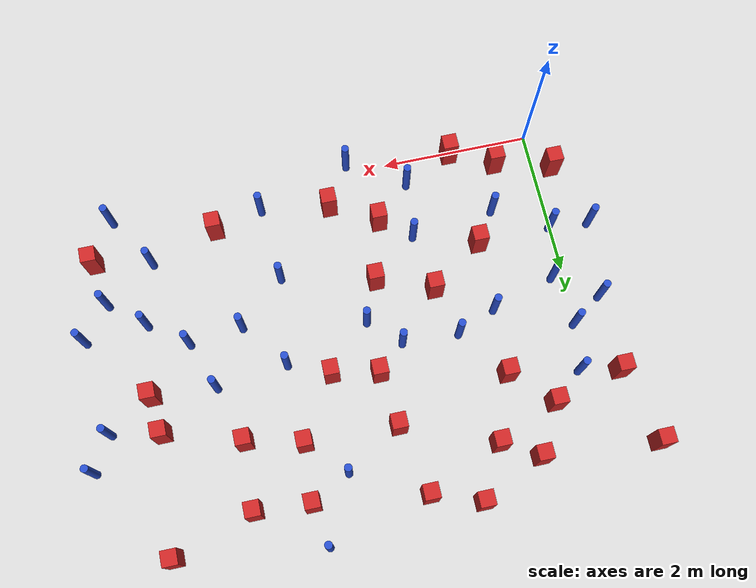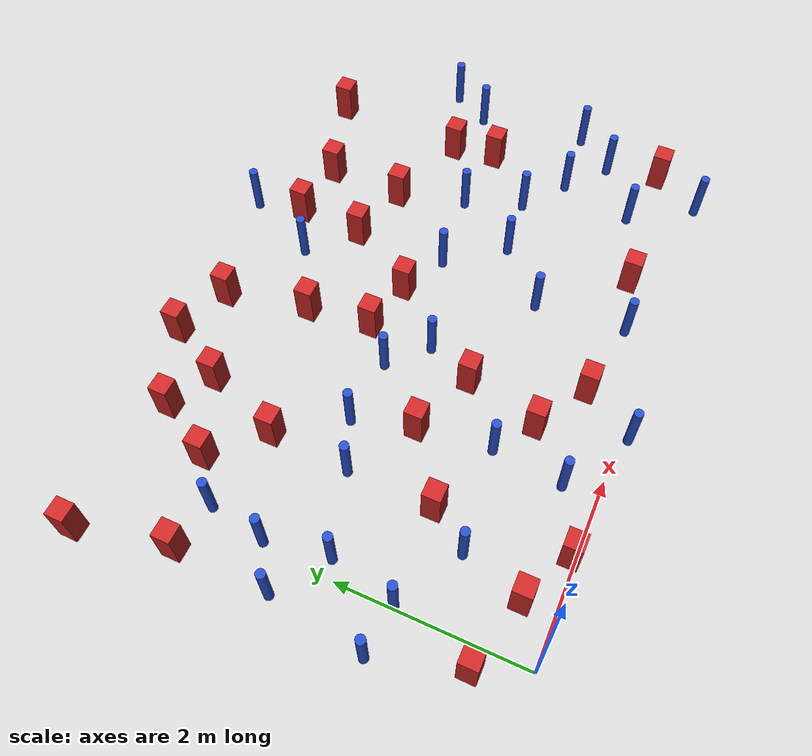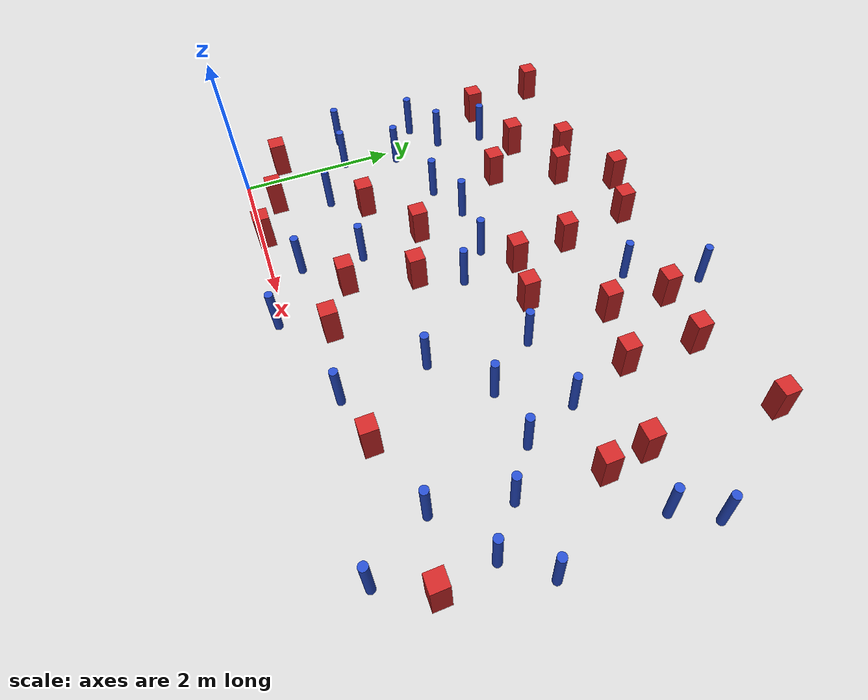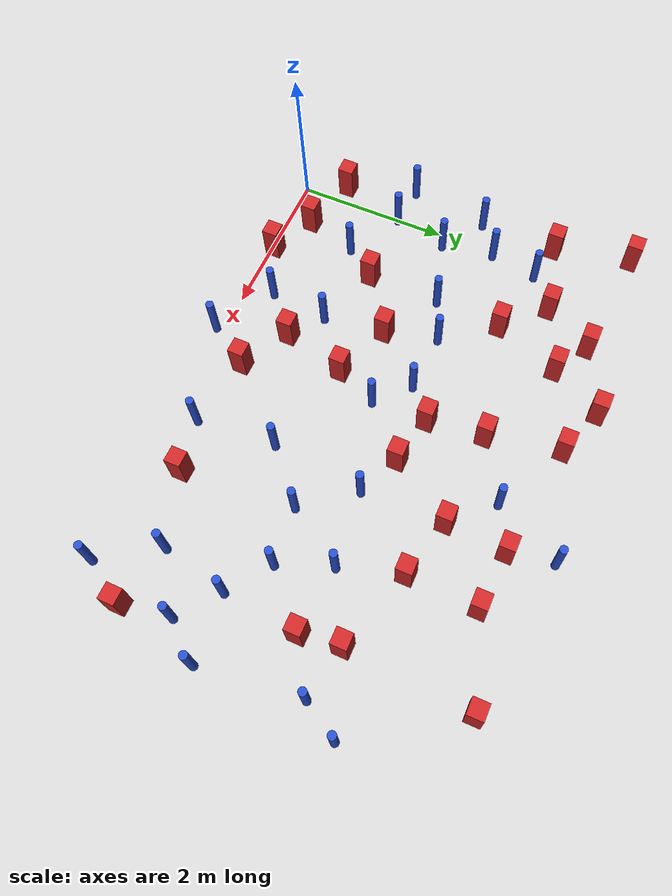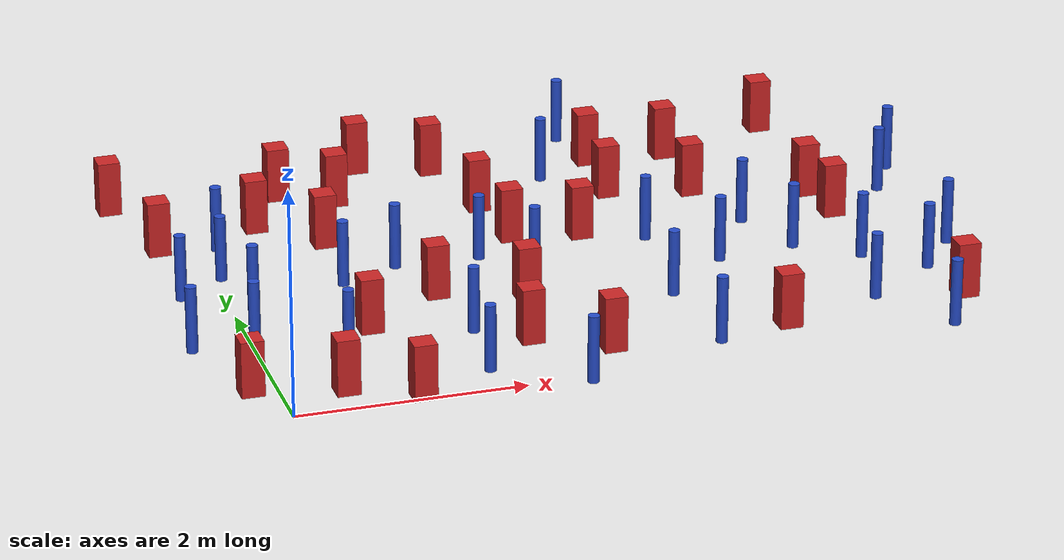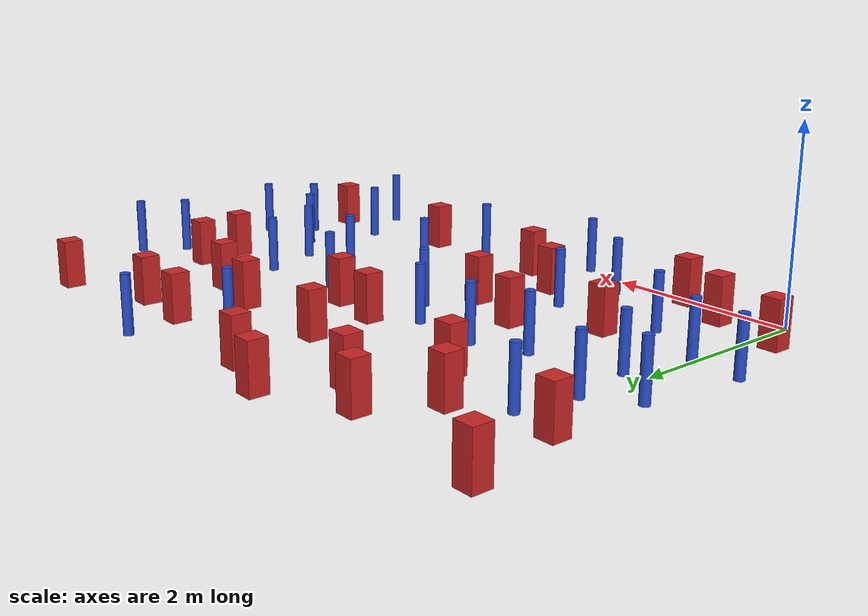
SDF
<sdf version="1.6">
 <model name="dense_28">
  <model name="square_post_obstacle4">
   <static>true</static>
   <pose>2.62261659096 3.62090149515 8.22691968438e-08 7.2212513382e-06 -7.54495500217e-07 2.29674213826e-05</pose>
   <link name="link">
    <pose>0 0 0.25 0 -0 0</pose>
    <inertial>
     <mass>100</mass>
     <inertia>
      <ixx>0.166667</ixx>
      <ixy>0</ixy>
      <ixz>0</ixz>
      <iyy>0.166667</iyy>
      <iyz>0</iyz>
      <izz>0.166667</izz>
     </inertia>
    </inertial>
    <collision name="collision"><geometry><box><size>.2 .2 .5</size></box></geometry></collision>
    <visual name="visual">
     <geometry><box><size>.2 .2 .5</size></box></geometry>
     <material>
      <script><name>Gazebo/Red</name><uri>file://media/materials/scripts/gazebo.material</uri></script>
     </material>
    </visual>
   </link>
  </model>
  <model name="square_post_obstacle13">
   <static>true</static>
   <pose>1.10403048548 3.2495813458 8.22691968438e-08 7.2212513382e-06 -7.54495500217e-07 2.29674213826e-05</pose>
   <link name="link">
    <pose>0 0 0.25 0 -0 0</pose>
    <inertial>
     <mass>100</mass>
     <inertia>
      <ixx>0.166667</ixx>
      <ixy>0</ixy>
      <ixz>0</ixz>
      <iyy>0.166667</iyy>
      <iyz>0</iyz>
      <izz>0.166667</izz>
     </inertia>
    </inertial>
    <collision name="collision"><geometry><box><size>.2 .2 .5</size></box></geometry></collision>
    <visual name="visual">
     <geometry><box><size>.2 .2 .5</size></box></geometry>
     <material>
      <script><name>Gazebo/Red</name><uri>file://media/materials/scripts/gazebo.material</uri></script>
     </material>
    </visual>
   </link>
  </model>
  <model name="square_post_obstacle18">
   <static>true</static>
   <pose>2.70620414548 2.89905259573 8.22691968438e-08 7.2212513382e-06 -7.54495500217e-07 2.29674213826e-05</pose>
   <link name="link">
    <pose>0 0 0.25 0 -0 0</pose>
    <inertial>
     <mass>100</mass>
     <inertia>
      <ixx>0.166667</ixx>
      <ixy>0</ixy>
      <ixz>0</ixz>
      <iyy>0.166667</iyy>
      <iyz>0</iyz>
      <izz>0.166667</izz>
     </inertia>
    </inertial>
    <collision name="collision"><geometry><box><size>.2 .2 .5</size></box></geometry></collision>
    <visual name="visual">
     <geometry><box><size>.2 .2 .5</size></box></geometry>
     <material>
      <script><name>Gazebo/Red</name><uri>file://media/materials/scripts/gazebo.material</uri></script>
     </material>
    </visual>
   </link>
  </model>
  <model name="square_post_obstacle20">
   <static>true</static>
   <pose>0.602518353487 3.74456204148 8.22691968438e-08 7.2212513382e-06 -7.54495500217e-07 2.29674213826e-05</pose>
   <link name="link">
    <pose>0 0 0.25 0 -0 0</pose>
    <inertial>
     <mass>100</mass>
     <inertia>
      <ixx>0.166667</ixx>
      <ixy>0</ixy>
      <ixz>0</ixz>
      <iyy>0.166667</iyy>
      <iyz>0</iyz>
      <izz>0.166667</izz>
     </inertia>
    </inertial>
    <collision name="collision"><geometry><box><size>.2 .2 .5</size></box></geometry></collision>
    <visual name="visual">
     <geometry><box><size>.2 .2 .5</size></box></geometry>
     <material>
      <script><name>Gazebo/Red</name><uri>file://media/materials/scripts/gazebo.material</uri></script>
     </material>
    </visual>
   </link>
  </model>
  <model name="square_post_obstacle21">
   <static>true</static>
   <pose>2.87978851423 0.481293469229 8.22691968438e-08 7.2212513382e-06 -7.54495500217e-07 2.29674213826e-05</pose>
   <link name="link">
    <pose>0 0 0.25 0 -0 0</pose>
    <inertial>
     <mass>100</mass>
     <inertia>
      <ixx>0.166667</ixx>
      <ixy>0</ixy>
      <ixz>0</ixz>
      <iyy>0.166667</iyy>
      <iyz>0</iyz>
      <izz>0.166667</izz>
     </inertia>
    </inertial>
    <collision name="collision"><geometry><box><size>.2 .2 .5</size></box></geometry></collision>
    <visual name="visual">
     <geometry><box><size>.2 .2 .5</size></box></geometry>
     <material>
      <script><name>Gazebo/Red</name><uri>file://media/materials/scripts/gazebo.material</uri></script>
     </material>
    </visual>
   </link>
  </model>
  <model name="pole_obstacle15">
   <static>true</static>
   <pose>0.735092478149 0.998841244981 2.88873142074e-08 -9.90536690204e-09 4.6021994898e-07 -1.20965994967e-07</pose>
   <link name="link">
    <pose>0 0 0.3 0 -0 0</pose>
    <inertial>
     <mass>1</mass>
     <inertia><ixx>0.145833</ixx><ixy>0</ixy><ixz>0</ixz><iyy>0.145833</iyy><iyz>0</iyz><izz>0.125</izz></inertia>
    </inertial>
    <collision name="collision">
     <geometry><cylinder><radius>0.05</radius><length>.6</length></cylinder></geometry>
    </collision>
    <visual name="visual">
     <geometry><cylinder><radius>0.05</radius><length>.6</length></cylinder></geometry>
     <material>
      <script><name>Gazebo/Blue</name><uri>file://media/materials/scripts/gazebo.material</uri></script>
     </material>
    </visual>
   </link>
  </model>
  <model name="pole_obstacle16">
   <static>true</static>
   <pose>5.79698424891 0.0809831116426 2.88873142074e-08 -9.90536689727e-09 4.60219948992e-07 -1.20965994958e-07</pose>
   <link name="link">
    <pose>0 0 0.3 0 -0 0</pose>
    <inertial>
     <mass>1</mass>
     <inertia><ixx>0.145833</ixx><ixy>0</ixy><ixz>0</ixz><iyy>0.145833</iyy><iyz>0</iyz><izz>0.125</izz></inertia>
    </inertial>
    <collision name="collision">
     <geometry><cylinder><radius>0.05</radius><length>.6</length></cylinder></geometry>
    </collision>
    <visual name="visual">
     <geometry><cylinder><radius>0.05</radius><length>.6</length></cylinder></geometry>
     <material>
      <script><name>Gazebo/Blue</name><uri>file://media/materials/scripts/gazebo.material</uri></script>
     </material>
    </visual>
   </link>
  </model>
  <model name="square_post_obstacle31">
   <static>true</static>
   <pose>2.43105017646 4.54562582871 8.22691968438e-08 7.2212513382e-06 -7.54495500217e-07 2.29674213826e-05</pose>
   <link name="link">
    <pose>0 0 0.25 0 -0 0</pose>
    <inertial>
     <mass>100</mass>
     <inertia>
      <ixx>0.166667</ixx>
      <ixy>0</ixy>
      <ixz>0</ixz>
      <iyy>0.166667</iyy>
      <iyz>0</iyz>
      <izz>0.166667</izz>
     </inertia>
    </inertial>
    <collision name="collision"><geometry><box><size>.2 .2 .5</size></box></geometry></collision>
    <visual name="visual">
     <geometry><box><size>.2 .2 .5</size></box></geometry>
     <material>
      <script><name>Gazebo/Red</name><uri>file://media/materials/scripts/gazebo.material</uri></script>
     </material>
    </visual>
   </link>
  </model>
  <model name="pole_obstacle22">
   <static>true</static>
   <pose>-0.501604950757 1.44115727738 2.88873142074e-08 -9.90536689621e-09 4.60219948994e-07 -1.20965994957e-07</pose>
   <link name="link">
    <pose>0 0 0.3 0 -0 0</pose>
    <inertial>
     <mass>1</mass>
     <inertia><ixx>0.145833</ixx><ixy>0</ixy><ixz>0</ixz><iyy>0.145833</iyy><iyz>0</iyz><izz>0.125</izz></inertia>
    </inertial>
    <collision name="collision">
     <geometry><cylinder><radius>0.05</radius><length>.6</length></cylinder></geometry>
    </collision>
    <visual name="visual">
     <geometry><cylinder><radius>0.05</radius><length>.6</length></cylinder></geometry>
     <material>
      <script><name>Gazebo/Blue</name><uri>file://media/materials/scripts/gazebo.material</uri></script>
     </material>
    </visual>
   </link>
  </model>
  <model name="pole_obstacle27">
   <static>true</static>
   <pose>1.57937318762 2.5967450185 2.88873142074e-08 -9.90536689791e-09 4.6021994899e-07 -1.20965994959e-07</pose>
   <link name="link">
    <pose>0 0 0.3 0 -0 0</pose>
    <inertial>
     <mass>1</mass>
     <inertia><ixx>0.145833</ixx><ixy>0</ixy><ixz>0</ixz><iyy>0.145833</iyy><iyz>0</iyz><izz>0.125</izz></inertia>
    </inertial>
    <collision name="collision">
     <geometry><cylinder><radius>0.05</radius><length>.6</length></cylinder></geometry>
    </collision>
    <visual name="visual">
     <geometry><cylinder><radius>0.05</radius><length>.6</length></cylinder></geometry>
     <material>
      <script><name>Gazebo/Blue</name><uri>file://media/materials/scripts/gazebo.material</uri></script>
     </material>
    </visual>
   </link>
  </model>
  <model name="pole_obstacle28">
   <static>true</static>
   <pose>0.0711021066911 2.78482618308 2.88873142074e-08 -9.90536692479e-09 4.60219948927e-07 -1.20965994989e-07</pose>
   <link name="link">
    <pose>0 0 0.3 0 -0 0</pose>
    <inertial>
     <mass>1</mass>
     <inertia><ixx>0.145833</ixx><ixy>0</ixy><ixz>0</ixz><iyy>0.145833</iyy><iyz>0</iyz><izz>0.125</izz></inertia>
    </inertial>
    <collision name="collision">
     <geometry><cylinder><radius>0.05</radius><length>.6</length></cylinder></geometry>
    </collision>
    <visual name="visual">
     <geometry><cylinder><radius>0.05</radius><length>.6</length></cylinder></geometry>
     <material>
      <script><name>Gazebo/Blue</name><uri>file://media/materials/scripts/gazebo.material</uri></script>
     </material>
    </visual>
   </link>
  </model>
  <model name="pole_obstacle31">
   <static>true</static>
   <pose>5.54209693001 1.62750616036 2.88873142074e-08 -9.90536689445e-09 4.60219948999e-07 -1.20965994956e-07</pose>
   <link name="link">
    <pose>0 0 0.3 0 -0 0</pose>
    <inertial>
     <mass>1</mass>
     <inertia><ixx>0.145833</ixx><ixy>0</ixy><ixz>0</ixz><iyy>0.145833</iyy><iyz>0</iyz><izz>0.125</izz></inertia>
    </inertial>
    <collision name="collision">
     <geometry><cylinder><radius>0.05</radius><length>.6</length></cylinder></geometry>
    </collision>
    <visual name="visual">
     <geometry><cylinder><radius>0.05</radius><length>.6</length></cylinder></geometry>
     <material>
      <script><name>Gazebo/Blue</name><uri>file://media/materials/scripts/gazebo.material</uri></script>
     </material>
    </visual>
   </link>
  </model>
  <model name="pole_obstacle47">
   <static>true</static>
   <pose>6.20660354552 2.96202624904 2.88873142074e-08 -9.90536690245e-09 4.6021994898e-07 -1.20965994966e-07</pose>
   <link name="link">
    <pose>0 0 0.3 0 -0 0</pose>
    <inertial>
     <mass>1</mass>
     <inertia><ixx>0.145833</ixx><ixy>0</ixy><ixz>0</ixz><iyy>0.145833</iyy><iyz>0</iyz><izz>0.125</izz></inertia>
    </inertial>
    <collision name="collision">
     <geometry><cylinder><radius>0.05</radius><length>.6</length></cylinder></geometry>
    </collision>
    <visual name="visual">
     <geometry><cylinder><radius>0.05</radius><length>.6</length></cylinder></geometry>
     <material>
      <script><name>Gazebo/Blue</name><uri>file://media/materials/scripts/gazebo.material</uri></script>
     </material>
    </visual>
   </link>
  </model>
  <model name="square_post_obstacle50">
   <static>true</static>
   <pose>6.10516463715 0.632587236259 8.22691968438e-08 7.2212513382e-06 -7.54495500217e-07 2.29674213826e-05</pose>
   <link name="link">
    <pose>0 0 0.25 0 -0 0</pose>
    <inertial>
     <mass>100</mass>
     <inertia>
      <ixx>0.166667</ixx>
      <ixy>0</ixy>
      <ixz>0</ixz>
      <iyy>0.166667</iyy>
      <iyz>0</iyz>
      <izz>0.166667</izz>
     </inertia>
    </inertial>
    <collision name="collision"><geometry><box><size>.2 .2 .5</size></box></geometry></collision>
    <visual name="visual">
     <geometry><box><size>.2 .2 .5</size></box></geometry>
     <material>
      <script><name>Gazebo/Red</name><uri>file://media/materials/scripts/gazebo.material</uri></script>
     </material>
    </visual>
   </link>
  </model>
  <model name="pole_obstacle53">
   <static>true</static>
   <pose>6.46365630959 3.40705639726 2.88873142074e-08 -9.90536690245e-09 4.6021994898e-07 -1.20965994966e-07</pose>
   <link name="link">
    <pose>0 0 0.3 0 -0 0</pose>
    <inertial>
     <mass>1</mass>
     <inertia><ixx>0.145833</ixx><ixy>0</ixy><ixz>0</ixz><iyy>0.145833</iyy><iyz>0</iyz><izz>0.125</izz></inertia>
    </inertial>
    <collision name="collision">
     <geometry><cylinder><radius>0.05</radius><length>.6</length></cylinder></geometry>
    </collision>
    <visual name="visual">
     <geometry><cylinder><radius>0.05</radius><length>.6</length></cylinder></geometry>
     <material>
      <script><name>Gazebo/Blue</name><uri>file://media/materials/scripts/gazebo.material</uri></script>
     </material>
    </visual>
   </link>
  </model>
  <model name="pole_obstacle59">
   <static>true</static>
   <pose>3.71259882639 1.35113123196 2.88873142074e-08 -9.90536689395e-09 4.60219949e-07 -1.20965994953e-07</pose>
   <link name="link">
    <pose>0 0 0.3 0 -0 0</pose>
    <inertial>
     <mass>1</mass>
     <inertia><ixx>0.145833</ixx><ixy>0</ixy><ixz>0</ixz><iyy>0.145833</iyy><iyz>0</iyz><izz>0.125</izz></inertia>
    </inertial>
    <collision name="collision">
     <geometry><cylinder><radius>0.05</radius><length>.6</length></cylinder></geometry>
    </collision>
    <visual name="visual">
     <geometry><cylinder><radius>0.05</radius><length>.6</length></cylinder></geometry>
     <material>
      <script><name>Gazebo/Blue</name><uri>file://media/materials/scripts/gazebo.material</uri></script>
     </material>
    </visual>
   </link>
  </model>
  <model name="pole_obstacle61">
   <static>true</static>
   <pose>1.86023330408 1.13393428423 2.88873142074e-08 -9.90536689672e-09 4.60219948993e-07 -1.20965994959e-07</pose>
   <link name="link">
    <pose>0 0 0.3 0 -0 0</pose>
    <inertial>
     <mass>1</mass>
     <inertia><ixx>0.145833</ixx><ixy>0</ixy><ixz>0</ixz><iyy>0.145833</iyy><iyz>0</iyz><izz>0.125</izz></inertia>
    </inertial>
    <collision name="collision">
     <geometry><cylinder><radius>0.05</radius><length>.6</length></cylinder></geometry>
    </collision>
    <visual name="visual">
     <geometry><cylinder><radius>0.05</radius><length>.6</length></cylinder></geometry>
     <material>
      <script><name>Gazebo/Blue</name><uri>file://media/materials/scripts/gazebo.material</uri></script>
     </material>
    </visual>
   </link>
  </model>
  <model name="square_post_obstacle65">
   <static>true</static>
   <pose>3.31616375345 2.77729734283 8.22691968438e-08 7.2212513382e-06 -7.54495500217e-07 2.29674213826e-05</pose>
   <link name="link">
    <pose>0 0 0.25 0 -0 0</pose>
    <inertial>
     <mass>100</mass>
     <inertia>
      <ixx>0.166667</ixx>
      <ixy>0</ixy>
      <ixz>0</ixz>
      <iyy>0.166667</iyy>
      <iyz>0</iyz>
      <izz>0.166667</izz>
     </inertia>
    </inertial>
    <collision name="collision"><geometry><box><size>.2 .2 .5</size></box></geometry></collision>
    <visual name="visual">
     <geometry><box><size>.2 .2 .5</size></box></geometry>
     <material>
      <script><name>Gazebo/Red</name><uri>file://media/materials/scripts/gazebo.material</uri></script>
     </material>
    </visual>
   </link>
  </model>
  <model name="square_post_obstacle74">
   <static>true</static>
   <pose>0.534242562997 0.334819226586 8.22691968438e-08 7.22125133819e-06 -7.54495500217e-07 2.29674213826e-05</pose>
   <link name="link">
    <pose>0 0 0.25 0 -0 0</pose>
    <inertial>
     <mass>100</mass>
     <inertia>
      <ixx>0.166667</ixx>
      <ixy>0</ixy>
      <ixz>0</ixz>
      <iyy>0.166667</iyy>
      <iyz>0</iyz>
      <izz>0.166667</izz>
     </inertia>
    </inertial>
    <collision name="collision"><geometry><box><size>.2 .2 .5</size></box></geometry></collision>
    <visual name="visual">
     <geometry><box><size>.2 .2 .5</size></box></geometry>
     <material>
      <script><name>Gazebo/Red</name><uri>file://media/materials/scripts/gazebo.material</uri></script>
     </material>
    </visual>
   </link>
  </model>
  <model name="pole_obstacle73">
   <static>true</static>
   <pose>5.03723471642 1.99553160137 2.88873142074e-08 -9.90536689273e-09 4.60219949003e-07 -1.20965994953e-07</pose>
   <link name="link">
    <pose>0 0 0.3 0 -0 0</pose>
    <inertial>
     <mass>1</mass>
     <inertia><ixx>0.145833</ixx><ixy>0</ixy><ixz>0</ixz><iyy>0.145833</iyy><iyz>0</iyz><izz>0.125</izz></inertia>
    </inertial>
    <collision name="collision">
     <geometry><cylinder><radius>0.05</radius><length>.6</length></cylinder></geometry>
    </collision>
    <visual name="visual">
     <geometry><cylinder><radius>0.05</radius><length>.6</length></cylinder></geometry>
     <material>
      <script><name>Gazebo/Blue</name><uri>file://media/materials/scripts/gazebo.material</uri></script>
     </material>
    </visual>
   </link>
  </model>
  <model name="pole_obstacle85">
   <static>true</static>
   <pose>1.776668315 0.367303651979 2.88873142074e-08 -9.90536689733e-09 4.60219948992e-07 -1.20965994959e-07</pose>
   <link name="link">
    <pose>0 0 0.3 0 -0 0</pose>
    <inertial>
     <mass>1</mass>
     <inertia><ixx>0.145833</ixx><ixy>0</ixy><ixz>0</ixz><iyy>0.145833</iyy><iyz>0</iyz><izz>0.125</izz></inertia>
    </inertial>
    <collision name="collision">
     <geometry><cylinder><radius>0.05</radius><length>.6</length></cylinder></geometry>
    </collision>
    <visual name="visual">
     <geometry><cylinder><radius>0.05</radius><length>.6</length></cylinder></geometry>
     <material>
      <script><name>Gazebo/Blue</name><uri>file://media/materials/scripts/gazebo.material</uri></script>
     </material>
    </visual>
   </link>
  </model>
  <model name="square_post_obstacle80">
   <static>true</static>
   <pose>5.55546648257 3.09088001525 8.22691968438e-08 7.2212513382e-06 -7.54495500217e-07 2.29674213826e-05</pose>
   <link name="link">
    <pose>0 0 0.25 0 -0 0</pose>
    <inertial>
     <mass>100</mass>
     <inertia>
      <ixx>0.166667</ixx>
      <ixy>0</ixy>
      <ixz>0</ixz>
      <iyy>0.166667</iyy>
      <iyz>0</iyz>
      <izz>0.166667</izz>
     </inertia>
    </inertial>
    <collision name="collision"><geometry><box><size>.2 .2 .5</size></box></geometry></collision>
    <visual name="visual">
     <geometry><box><size>.2 .2 .5</size></box></geometry>
     <material>
      <script><name>Gazebo/Red</name><uri>file://media/materials/scripts/gazebo.material</uri></script>
     </material>
    </visual>
   </link>
  </model>
  <model name="square_post_obstacle81">
   <static>true</static>
   <pose>-0.551517128975 4.50697306945 8.22691968438e-08 7.2212513382e-06 -7.54495500217e-07 2.29674213826e-05</pose>
   <link name="link">
    <pose>0 0 0.25 0 -0 0</pose>
    <inertial>
     <mass>100</mass>
     <inertia>
      <ixx>0.166667</ixx>
      <ixy>0</ixy>
      <ixz>0</ixz>
      <iyy>0.166667</iyy>
      <iyz>0</iyz>
      <izz>0.166667</izz>
     </inertia>
    </inertial>
    <collision name="collision"><geometry><box><size>.2 .2 .5</size></box></geometry></collision>
    <visual name="visual">
     <geometry><box><size>.2 .2 .5</size></box></geometry>
     <material>
      <script><name>Gazebo/Red</name><uri>file://media/materials/scripts/gazebo.material</uri></script>
     </material>
    </visual>
   </link>
  </model>
  <model name="pole_obstacle94">
   <static>true</static>
   <pose>4.78990463097 2.6457673171 2.88873142074e-08 -9.90536690245e-09 4.6021994898e-07 -1.20965994966e-07</pose>
   <link name="link">
    <pose>0 0 0.3 0 -0 0</pose>
    <inertial>
     <mass>1</mass>
     <inertia><ixx>0.145833</ixx><ixy>0</ixy><ixz>0</ixz><iyy>0.145833</iyy><iyz>0</iyz><izz>0.125</izz></inertia>
    </inertial>
    <collision name="collision">
     <geometry><cylinder><radius>0.05</radius><length>.6</length></cylinder></geometry>
    </collision>
    <visual name="visual">
     <geometry><cylinder><radius>0.05</radius><length>.6</length></cylinder></geometry>
     <material>
      <script><name>Gazebo/Blue</name><uri>file://media/materials/scripts/gazebo.material</uri></script>
     </material>
    </visual>
   </link>
  </model>
  <model name="pole_obstacle96">
   <static>true</static>
   <pose>5.3490869151 0.785331650575 2.88873142074e-08 -9.90536689837e-09 4.60219948989e-07 -1.2096599496e-07</pose>
   <link name="link">
    <pose>0 0 0.3 0 -0 0</pose>
    <inertial>
     <mass>1</mass>
     <inertia><ixx>0.145833</ixx><ixy>0</ixy><ixz>0</ixz><iyy>0.145833</iyy><iyz>0</iyz><izz>0.125</izz></inertia>
    </inertial>
    <collision name="collision">
     <geometry><cylinder><radius>0.05</radius><length>.6</length></cylinder></geometry>
    </collision>
    <visual name="visual">
     <geometry><cylinder><radius>0.05</radius><length>.6</length></cylinder></geometry>
     <material>
      <script><name>Gazebo/Blue</name><uri>file://media/materials/scripts/gazebo.material</uri></script>
     </material>
    </visual>
   </link>
  </model>
  <model name="pole_obstacle104">
   <static>true</static>
   <pose>0.189261439396 2.10461520238 2.88873142074e-08 -9.90536689569e-09 4.60219948995e-07 -1.20965994955e-07</pose>
   <link name="link">
    <pose>0 0 0.3 0 -0 0</pose>
    <inertial>
     <mass>1</mass>
     <inertia><ixx>0.145833</ixx><ixy>0</ixy><ixz>0</ixz><iyy>0.145833</iyy><iyz>0</iyz><izz>0.125</izz></inertia>
    </inertial>
    <collision name="collision">
     <geometry><cylinder><radius>0.05</radius><length>.6</length></cylinder></geometry>
    </collision>
    <visual name="visual">
     <geometry><cylinder><radius>0.05</radius><length>.6</length></cylinder></geometry>
     <material>
      <script><name>Gazebo/Blue</name><uri>file://media/materials/scripts/gazebo.material</uri></script>
     </material>
    </visual>
   </link>
  </model>
  <model name="square_post_obstacle92">
   <static>true</static>
   <pose>4.59211533059 4.29067833879 8.22691968438e-08 7.2212513382e-06 -7.54495500217e-07 2.29674213826e-05</pose>
   <link name="link">
    <pose>0 0 0.25 0 -0 0</pose>
    <inertial>
     <mass>100</mass>
     <inertia>
      <ixx>0.166667</ixx>
      <ixy>0</ixy>
      <ixz>0</ixz>
      <iyy>0.166667</iyy>
      <iyz>0</iyz>
      <izz>0.166667</izz>
     </inertia>
    </inertial>
    <collision name="collision"><geometry><box><size>.2 .2 .5</size></box></geometry></collision>
    <visual name="visual">
     <geometry><box><size>.2 .2 .5</size></box></geometry>
     <material>
      <script><name>Gazebo/Red</name><uri>file://media/materials/scripts/gazebo.material</uri></script>
     </material>
    </visual>
   </link>
  </model>
  <model name="pole_obstacle108">
   <static>true</static>
   <pose>3.79269333524 0.333719324461 2.88873142074e-08 -9.90536689307e-09 4.60219949002e-07 -1.20965994954e-07</pose>
   <link name="link">
    <pose>0 0 0.3 0 -0 0</pose>
    <inertial>
     <mass>1</mass>
     <inertia><ixx>0.145833</ixx><ixy>0</ixy><ixz>0</ixz><iyy>0.145833</iyy><iyz>0</iyz><izz>0.125</izz></inertia>
    </inertial>
    <collision name="collision">
     <geometry><cylinder><radius>0.05</radius><length>.6</length></cylinder></geometry>
    </collision>
    <visual name="visual">
     <geometry><cylinder><radius>0.05</radius><length>.6</length></cylinder></geometry>
     <material>
      <script><name>Gazebo/Blue</name><uri>file://media/materials/scripts/gazebo.material</uri></script>
     </material>
    </visual>
   </link>
  </model>
  <model name="pole_obstacle113">
   <static>true</static>
   <pose>4.3310178954 1.9167147348 2.88873142074e-08 -9.90536689445e-09 4.60219948999e-07 -1.20965994956e-07</pose>
   <link name="link">
    <pose>0 0 0.3 0 -0 0</pose>
    <inertial>
     <mass>1</mass>
     <inertia><ixx>0.145833</ixx><ixy>0</ixy><ixz>0</ixz><iyy>0.145833</iyy><iyz>0</iyz><izz>0.125</izz></inertia>
    </inertial>
    <collision name="collision">
     <geometry><cylinder><radius>0.05</radius><length>.6</length></cylinder></geometry>
    </collision>
    <visual name="visual">
     <geometry><cylinder><radius>0.05</radius><length>.6</length></cylinder></geometry>
     <material>
      <script><name>Gazebo/Blue</name><uri>file://media/materials/scripts/gazebo.material</uri></script>
     </material>
    </visual>
   </link>
  </model>
  <model name="pole_obstacle126">
   <static>true</static>
   <pose>0.0246405944287 1.38914540518 2.88873142074e-08 -9.9053669004e-09 4.60219948984e-07 -1.20965994962e-07</pose>
   <link name="link">
    <pose>0 0 0.3 0 -0 0</pose>
    <inertial>
     <mass>1</mass>
     <inertia><ixx>0.145833</ixx><ixy>0</ixy><ixz>0</ixz><iyy>0.145833</iyy><iyz>0</iyz><izz>0.125</izz></inertia>
    </inertial>
    <collision name="collision">
     <geometry><cylinder><radius>0.05</radius><length>.6</length></cylinder></geometry>
    </collision>
    <visual name="visual">
     <geometry><cylinder><radius>0.05</radius><length>.6</length></cylinder></geometry>
     <material>
      <script><name>Gazebo/Blue</name><uri>file://media/materials/scripts/gazebo.material</uri></script>
     </material>
    </visual>
   </link>
  </model>
  <model name="square_post_obstacle113">
   <static>true</static>
   <pose>4.55620565589 3.40657804077 8.22691968438e-08 7.2212513382e-06 -7.54495500217e-07 2.29674213826e-05</pose>
   <link name="link">
    <pose>0 0 0.25 0 -0 0</pose>
    <inertial>
     <mass>100</mass>
     <inertia>
      <ixx>0.166667</ixx>
      <ixy>0</ixy>
      <ixz>0</ixz>
      <iyy>0.166667</iyy>
      <iyz>0</iyz>
      <izz>0.166667</izz>
     </inertia>
    </inertial>
    <collision name="collision"><geometry><box><size>.2 .2 .5</size></box></geometry></collision>
    <visual name="visual">
     <geometry><box><size>.2 .2 .5</size></box></geometry>
     <material>
      <script><name>Gazebo/Red</name><uri>file://media/materials/scripts/gazebo.material</uri></script>
     </material>
    </visual>
   </link>
  </model>
  <model name="pole_obstacle138">
   <static>true</static>
   <pose>3.85060433284 2.53694885012 2.88873142074e-08 -9.90536690232e-09 4.6021994898e-07 -1.20965994968e-07</pose>
   <link name="link">
    <pose>0 0 0.3 0 -0 0</pose>
    <inertial>
     <mass>1</mass>
     <inertia><ixx>0.145833</ixx><ixy>0</ixy><ixz>0</ixz><iyy>0.145833</iyy><iyz>0</iyz><izz>0.125</izz></inertia>
    </inertial>
    <collision name="collision">
     <geometry><cylinder><radius>0.05</radius><length>.6</length></cylinder></geometry>
    </collision>
    <visual name="visual">
     <geometry><cylinder><radius>0.05</radius><length>.6</length></cylinder></geometry>
     <material>
      <script><name>Gazebo/Blue</name><uri>file://media/materials/scripts/gazebo.material</uri></script>
     </material>
    </visual>
   </link>
  </model>
  <model name="square_post_obstacle128">
   <static>true</static>
   <pose>3.82188614736 3.58661518218 8.22691968438e-08 7.2212513382e-06 -7.54495500217e-07 2.29674213826e-05</pose>
   <link name="link">
    <pose>0 0 0.25 0 -0 0</pose>
    <inertial>
     <mass>100</mass>
     <inertia>
      <ixx>0.166667</ixx>
      <ixy>0</ixy>
      <ixz>0</ixz>
      <iyy>0.166667</iyy>
      <iyz>0</iyz>
      <izz>0.166667</izz>
     </inertia>
    </inertial>
    <collision name="collision"><geometry><box><size>.2 .2 .5</size></box></geometry></collision>
    <visual name="visual">
     <geometry><box><size>.2 .2 .5</size></box></geometry>
     <material>
      <script><name>Gazebo/Red</name><uri>file://media/materials/scripts/gazebo.material</uri></script>
     </material>
    </visual>
   </link>
  </model>
  <model name="square_post_obstacle130">
   <static>true</static>
   <pose>1.75516349228 1.9314198137 8.22691968438e-08 7.2212513382e-06 -7.54495500217e-07 2.29674213826e-05</pose>
   <link name="link">
    <pose>0 0 0.25 0 -0 0</pose>
    <inertial>
     <mass>100</mass>
     <inertia>
      <ixx>0.166667</ixx>
      <ixy>0</ixy>
      <ixz>0</ixz>
      <iyy>0.166667</iyy>
      <iyz>0</iyz>
      <izz>0.166667</izz>
     </inertia>
    </inertial>
    <collision name="collision"><geometry><box><size>.2 .2 .5</size></box></geometry></collision>
    <visual name="visual">
     <geometry><box><size>.2 .2 .5</size></box></geometry>
     <material>
      <script><name>Gazebo/Red</name><uri>file://media/materials/scripts/gazebo.material</uri></script>
     </material>
    </visual>
   </link>
  </model>
  <model name="square_post_obstacle131">
   <static>true</static>
   <pose>5.61900257603 2.58503649393 8.22691968438e-08 7.2212513382e-06 -7.54495500217e-07 2.29674213826e-05</pose>
   <link name="link">
    <pose>0 0 0.25 0 -0 0</pose>
    <inertial>
     <mass>100</mass>
     <inertia>
      <ixx>0.166667</ixx>
      <ixy>0</ixy>
      <ixz>0</ixz>
      <iyy>0.166667</iyy>
      <iyz>0</iyz>
      <izz>0.166667</izz>
     </inertia>
    </inertial>
    <collision name="collision"><geometry><box><size>.2 .2 .5</size></box></geometry></collision>
    <visual name="visual">
     <geometry><box><size>.2 .2 .5</size></box></geometry>
     <material>
      <script><name>Gazebo/Red</name><uri>file://media/materials/scripts/gazebo.material</uri></script>
     </material>
    </visual>
   </link>
  </model>
  <model name="square_post_obstacle135">
   <static>true</static>
   <pose>-0.222274417644 0.537496266897 8.22691968438e-08 7.22125133819e-06 -7.54495500217e-07 2.29674213826e-05</pose>
   <link name="link">
    <pose>0 0 0.25 0 -0 0</pose>
    <inertial>
     <mass>100</mass>
     <inertia>
      <ixx>0.166667</ixx>
      <ixy>0</ixy>
      <ixz>0</ixz>
      <iyy>0.166667</iyy>
      <iyz>0</iyz>
      <izz>0.166667</izz>
     </inertia>
    </inertial>
    <collision name="collision"><geometry><box><size>.2 .2 .5</size></box></geometry></collision>
    <visual name="visual">
     <geometry><box><size>.2 .2 .5</size></box></geometry>
     <material>
      <script><name>Gazebo/Red</name><uri>file://media/materials/scripts/gazebo.material</uri></script>
     </material>
    </visual>
   </link>
  </model>
  <model name="square_post_obstacle139">
   <static>true</static>
   <pose>3.87147319108 4.34607199502 8.22691968438e-08 7.2212513382e-06 -7.54495500217e-07 2.29674213826e-05</pose>
   <link name="link">
    <pose>0 0 0.25 0 -0 0</pose>
    <inertial>
     <mass>100</mass>
     <inertia>
      <ixx>0.166667</ixx>
      <ixy>0</ixy>
      <ixz>0</ixz>
      <iyy>0.166667</iyy>
      <iyz>0</iyz>
      <izz>0.166667</izz>
     </inertia>
    </inertial>
    <collision name="collision"><geometry><box><size>.2 .2 .5</size></box></geometry></collision>
    <visual name="visual">
     <geometry><box><size>.2 .2 .5</size></box></geometry>
     <material>
      <script><name>Gazebo/Red</name><uri>file://media/materials/scripts/gazebo.material</uri></script>
     </material>
    </visual>
   </link>
  </model>
  <model name="pole_obstacle149">
   <static>true</static>
   <pose>3.35840626471 4.0700780427 2.88873142074e-08 -9.90536689859e-09 4.60219948989e-07 -1.20965994961e-07</pose>
   <link name="link">
    <pose>0 0 0.3 0 -0 0</pose>
    <inertial>
     <mass>1</mass>
     <inertia><ixx>0.145833</ixx><ixy>0</ixy><ixz>0</ixz><iyy>0.145833</iyy><iyz>0</iyz><izz>0.125</izz></inertia>
    </inertial>
    <collision name="collision">
     <geometry><cylinder><radius>0.05</radius><length>.6</length></cylinder></geometry>
    </collision>
    <visual name="visual">
     <geometry><cylinder><radius>0.05</radius><length>.6</length></cylinder></geometry>
     <material>
      <script><name>Gazebo/Blue</name><uri>file://media/materials/scripts/gazebo.material</uri></script>
     </material>
    </visual>
   </link>
  </model>
  <model name="pole_obstacle150">
   <static>true</static>
   <pose>0.179828503936 3.40505107024 2.88873142074e-08 -9.90536689569e-09 4.60219948995e-07 -1.20965994955e-07</pose>
   <link name="link">
    <pose>0 0 0.3 0 -0 0</pose>
    <inertial>
     <mass>1</mass>
     <inertia><ixx>0.145833</ixx><ixy>0</ixy><ixz>0</ixz><iyy>0.145833</iyy><iyz>0</iyz><izz>0.125</izz></inertia>
    </inertial>
    <collision name="collision">
     <geometry><cylinder><radius>0.05</radius><length>.6</length></cylinder></geometry>
    </collision>
    <visual name="visual">
     <geometry><cylinder><radius>0.05</radius><length>.6</length></cylinder></geometry>
     <material>
      <script><name>Gazebo/Blue</name><uri>file://media/materials/scripts/gazebo.material</uri></script>
     </material>
    </visual>
   </link>
  </model>
  <model name="pole_obstacle151">
   <static>true</static>
   <pose>6.0114071119 1.24315573809 2.88873142074e-08 -9.90536689445e-09 4.60219948999e-07 -1.20965994956e-07</pose>
   <link name="link">
    <pose>0 0 0.3 0 -0 0</pose>
    <inertial>
     <mass>1</mass>
     <inertia><ixx>0.145833</ixx><ixy>0</ixy><ixz>0</ixz><iyy>0.145833</iyy><iyz>0</iyz><izz>0.125</izz></inertia>
    </inertial>
    <collision name="collision">
     <geometry><cylinder><radius>0.05</radius><length>.6</length></cylinder></geometry>
    </collision>
    <visual name="visual">
     <geometry><cylinder><radius>0.05</radius><length>.6</length></cylinder></geometry>
     <material>
      <script><name>Gazebo/Blue</name><uri>file://media/materials/scripts/gazebo.material</uri></script>
     </material>
    </visual>
   </link>
  </model>
  <model name="square_post_obstacle144">
   <static>true</static>
   <pose>5.64750855685 4.64398675585 8.22691968438e-08 7.2212513382e-06 -7.54495500217e-07 2.29674213826e-05</pose>
   <link name="link">
    <pose>0 0 0.25 0 -0 0</pose>
    <inertial>
     <mass>100</mass>
     <inertia>
      <ixx>0.166667</ixx>
      <ixy>0</ixy>
      <ixz>0</ixz>
      <iyy>0.166667</iyy>
      <iyz>0</iyz>
      <izz>0.166667</izz>
     </inertia>
    </inertial>
    <collision name="collision"><geometry><box><size>.2 .2 .5</size></box></geometry></collision>
    <visual name="visual">
     <geometry><box><size>.2 .2 .5</size></box></geometry>
     <material>
      <script><name>Gazebo/Red</name><uri>file://media/materials/scripts/gazebo.material</uri></script>
     </material>
    </visual>
   </link>
  </model>
  <model name="square_post_obstacle146">
   <static>true</static>
   <pose>1.42907088368 4.10194704396 8.22691968438e-08 7.2212513382e-06 -7.54495500217e-07 2.29674213826e-05</pose>
   <link name="link">
    <pose>0 0 0.25 0 -0 0</pose>
    <inertial>
     <mass>100</mass>
     <inertia>
      <ixx>0.166667</ixx>
      <ixy>0</ixy>
      <ixz>0</ixz>
      <iyy>0.166667</iyy>
      <iyz>0</iyz>
      <izz>0.166667</izz>
     </inertia>
    </inertial>
    <collision name="collision"><geometry><box><size>.2 .2 .5</size></box></geometry></collision>
    <visual name="visual">
     <geometry><box><size>.2 .2 .5</size></box></geometry>
     <material>
      <script><name>Gazebo/Red</name><uri>file://media/materials/scripts/gazebo.material</uri></script>
     </material>
    </visual>
   </link>
  </model>
  <model name="square_post_obstacle152">
   <static>true</static>
   <pose>2.48802366903 1.65368858762 8.22691968438e-08 7.2212513382e-06 -7.54495500217e-07 2.29674213826e-05</pose>
   <link name="link">
    <pose>0 0 0.25 0 -0 0</pose>
    <inertial>
     <mass>100</mass>
     <inertia>
      <ixx>0.166667</ixx>
      <ixy>0</ixy>
      <ixz>0</ixz>
      <iyy>0.166667</iyy>
      <iyz>0</iyz>
      <izz>0.166667</izz>
     </inertia>
    </inertial>
    <collision name="collision"><geometry><box><size>.2 .2 .5</size></box></geometry></collision>
    <visual name="visual">
     <geometry><box><size>.2 .2 .5</size></box></geometry>
     <material>
      <script><name>Gazebo/Red</name><uri>file://media/materials/scripts/gazebo.material</uri></script>
     </material>
    </visual>
   </link>
  </model>
  <model name="pole_obstacle161">
   <static>true</static>
   <pose>2.32857335285 2.56291982243 2.88873142074e-08 -9.90536690232e-09 4.6021994898e-07 -1.20965994968e-07</pose>
   <link name="link">
    <pose>0 0 0.3 0 -0 0</pose>
    <inertial>
     <mass>1</mass>
     <inertia><ixx>0.145833</ixx><ixy>0</ixy><ixz>0</ixz><iyy>0.145833</iyy><iyz>0</iyz><izz>0.125</izz></inertia>
    </inertial>
    <collision name="collision">
     <geometry><cylinder><radius>0.05</radius><length>.6</length></cylinder></geometry>
    </collision>
    <visual name="visual">
     <geometry><cylinder><radius>0.05</radius><length>.6</length></cylinder></geometry>
     <material>
      <script><name>Gazebo/Blue</name><uri>file://media/materials/scripts/gazebo.material</uri></script>
     </material>
    </visual>
   </link>
  </model>
  <model name="pole_obstacle162">
   <static>true</static>
   <pose>-0.353130419857 2.48496953698 2.88873142074e-08 -9.90536689663e-09 4.60219948993e-07 -1.20965994959e-07</pose>
   <link name="link">
    <pose>0 0 0.3 0 -0 0</pose>
    <inertial>
     <mass>1</mass>
     <inertia><ixx>0.145833</ixx><ixy>0</ixy><ixz>0</ixz><iyy>0.145833</iyy><iyz>0</iyz><izz>0.125</izz></inertia>
    </inertial>
    <collision name="collision">
     <geometry><cylinder><radius>0.05</radius><length>.6</length></cylinder></geometry>
    </collision>
    <visual name="visual">
     <geometry><cylinder><radius>0.05</radius><length>.6</length></cylinder></geometry>
     <material>
      <script><name>Gazebo/Blue</name><uri>file://media/materials/scripts/gazebo.material</uri></script>
     </material>
    </visual>
   </link>
  </model>
  <model name="square_post_obstacle158">
   <static>true</static>
   <pose>2.26853291108 0.832722794029 8.22691968438e-08 7.2212513382e-06 -7.54495500217e-07 2.29674213826e-05</pose>
   <link name="link">
    <pose>0 0 0.25 0 -0 0</pose>
    <inertial>
     <mass>100</mass>
     <inertia>
      <ixx>0.166667</ixx>
      <ixy>0</ixy>
      <ixz>0</ixz>
      <iyy>0.166667</iyy>
      <iyz>0</iyz>
      <izz>0.166667</izz>
     </inertia>
    </inertial>
    <collision name="collision"><geometry><box><size>.2 .2 .5</size></box></geometry></collision>
    <visual name="visual">
     <geometry><box><size>.2 .2 .5</size></box></geometry>
     <material>
      <script><name>Gazebo/Red</name><uri>file://media/materials/scripts/gazebo.material</uri></script>
     </material>
    </visual>
   </link>
  </model>
  <model name="square_post_obstacle161">
   <static>true</static>
   <pose>-0.327894267826 3.50392063465 8.22691968438e-08 7.2212513382e-06 -7.54495500217e-07 2.29674213826e-05</pose>
   <link name="link">
    <pose>0 0 0.25 0 -0 0</pose>
    <inertial>
     <mass>100</mass>
     <inertia>
      <ixx>0.166667</ixx>
      <ixy>0</ixy>
      <ixz>0</ixz>
      <iyy>0.166667</iyy>
      <iyz>0</iyz>
      <izz>0.166667</izz>
     </inertia>
    </inertial>
    <collision name="collision"><geometry><box><size>.2 .2 .5</size></box></geometry></collision>
    <visual name="visual">
     <geometry><box><size>.2 .2 .5</size></box></geometry>
     <material>
      <script><name>Gazebo/Red</name><uri>file://media/materials/scripts/gazebo.material</uri></script>
     </material>
    </visual>
   </link>
  </model>
  <model name="pole_obstacle178">
   <static>true</static>
   <pose>2.72139684 2.18449112009 2.88873142074e-08 -9.90536690232e-09 4.6021994898e-07 -1.20965994968e-07</pose>
   <link name="link">
    <pose>0 0 0.3 0 -0 0</pose>
    <inertial>
     <mass>1</mass>
     <inertia><ixx>0.145833</ixx><ixy>0</ixy><ixz>0</ixz><iyy>0.145833</iyy><iyz>0</iyz><izz>0.125</izz></inertia>
    </inertial>
    <collision name="collision">
     <geometry><cylinder><radius>0.05</radius><length>.6</length></cylinder></geometry>
    </collision>
    <visual name="visual">
     <geometry><cylinder><radius>0.05</radius><length>.6</length></cylinder></geometry>
     <material>
      <script><name>Gazebo/Blue</name><uri>file://media/materials/scripts/gazebo.material</uri></script>
     </material>
    </visual>
   </link>
  </model>
  <model name="square_post_obstacle176">
   <static>true</static>
   <pose>0.960882808286 4.37645127541 8.22691968438e-08 7.2212513382e-06 -7.54495500217e-07 2.29674213826e-05</pose>
   <link name="link">
    <pose>0 0 0.25 0 -0 0</pose>
    <inertial>
     <mass>100</mass>
     <inertia>
      <ixx>0.166667</ixx>
      <ixy>0</ixy>
      <ixz>0</ixz>
      <iyy>0.166667</iyy>
      <iyz>0</iyz>
      <izz>0.166667</izz>
     </inertia>
    </inertial>
    <collision name="collision"><geometry><box><size>.2 .2 .5</size></box></geometry></collision>
    <visual name="visual">
     <geometry><box><size>.2 .2 .5</size></box></geometry>
     <material>
      <script><name>Gazebo/Red</name><uri>file://media/materials/scripts/gazebo.material</uri></script>
     </material>
    </visual>
   </link>
  </model>
  <model name="square_post_obstacle177">
   <static>true</static>
   <pose>1.11145267704 0.0589292855717 8.22691968438e-08 7.2212513382e-06 -7.54495500217e-07 2.29674213826e-05</pose>
   <link name="link">
    <pose>0 0 0.25 0 -0 0</pose>
    <inertial>
     <mass>100</mass>
     <inertia>
      <ixx>0.166667</ixx>
      <ixy>0</ixy>
      <ixz>0</ixz>
      <iyy>0.166667</iyy>
      <iyz>0</iyz>
      <izz>0.166667</izz>
     </inertia>
    </inertial>
    <collision name="collision"><geometry><box><size>.2 .2 .5</size></box></geometry></collision>
    <visual name="visual">
     <geometry><box><size>.2 .2 .5</size></box></geometry>
     <material>
      <script><name>Gazebo/Red</name><uri>file://media/materials/scripts/gazebo.material</uri></script>
     </material>
    </visual>
   </link>
  </model>
  <model name="square_post_obstacle190">
   <static>true</static>
   <pose>1.8005348178 4.77149776647 8.22691968438e-08 7.2212513382e-06 -7.54495500217e-07 2.29674213826e-05</pose>
   <link name="link">
    <pose>0 0 0.25 0 -0 0</pose>
    <inertial>
     <mass>100</mass>
     <inertia>
      <ixx>0.166667</ixx>
      <ixy>0</ixy>
      <ixz>0</ixz>
      <iyy>0.166667</iyy>
      <iyz>0</iyz>
      <izz>0.166667</izz>
     </inertia>
    </inertial>
    <collision name="collision"><geometry><box><size>.2 .2 .5</size></box></geometry></collision>
    <visual name="visual">
     <geometry><box><size>.2 .2 .5</size></box></geometry>
     <material>
      <script><name>Gazebo/Red</name><uri>file://media/materials/scripts/gazebo.material</uri></script>
     </material>
    </visual>
   </link>
  </model>
  <model name="square_post_obstacle191">
   <static>true</static>
   <pose>1.03232666628 1.42348495458 8.22691968438e-08 7.2212513382e-06 -7.54495500217e-07 2.29674213826e-05</pose>
   <link name="link">
    <pose>0 0 0.25 0 -0 0</pose>
    <inertial>
     <mass>100</mass>
     <inertia>
      <ixx>0.166667</ixx>
      <ixy>0</ixy>
      <ixz>0</ixz>
      <iyy>0.166667</iyy>
      <iyz>0</iyz>
      <izz>0.166667</izz>
     </inertia>
    </inertial>
    <collision name="collision"><geometry><box><size>.2 .2 .5</size></box></geometry></collision>
    <visual name="visual">
     <geometry><box><size>.2 .2 .5</size></box></geometry>
     <material>
      <script><name>Gazebo/Red</name><uri>file://media/materials/scripts/gazebo.material</uri></script>
     </material>
    </visual>
   </link>
  </model>
  <model name="pole_obstacle195">
   <static>true</static>
   <pose>2.52737888075 -0.0850877106097 2.88873142074e-08 -9.90536689633e-09 4.60219948994e-07 -1.20965994959e-07</pose>
   <link name="link">
    <pose>0 0 0.3 0 -0 0</pose>
    <inertial>
     <mass>1</mass>
     <inertia><ixx>0.145833</ixx><ixy>0</ixy><ixz>0</ixz><iyy>0.145833</iyy><iyz>0</iyz><izz>0.125</izz></inertia>
    </inertial>
    <collision name="collision">
     <geometry><cylinder><radius>0.05</radius><length>.6</length></cylinder></geometry>
    </collision>
    <visual name="visual">
     <geometry><cylinder><radius>0.05</radius><length>.6</length></cylinder></geometry>
     <material>
      <script><name>Gazebo/Blue</name><uri>file://media/materials/scripts/gazebo.material</uri></script>
     </material>
    </visual>
   </link>
  </model>
  <model name="square_post_obstacle215">
   <static>true</static>
   <pose>4.44354229513 0.491929130569 8.22691968438e-08 7.2212513382e-06 -7.54495500217e-07 2.29674213826e-05</pose>
   <link name="link">
    <pose>0 0 0.25 0 -0 0</pose>
    <inertial>
     <mass>100</mass>
     <inertia>
      <ixx>0.166667</ixx>
      <ixy>0</ixy>
      <ixz>0</ixz>
      <iyy>0.166667</iyy>
      <iyz>0</iyz>
      <izz>0.166667</izz>
     </inertia>
    </inertial>
    <collision name="collision"><geometry><box><size>.2 .2 .5</size></box></geometry></collision>
    <visual name="visual">
     <geometry><box><size>.2 .2 .5</size></box></geometry>
     <material>
      <script><name>Gazebo/Red</name><uri>file://media/materials/scripts/gazebo.material</uri></script>
     </material>
    </visual>
   </link>
  </model>
  <model name="pole_obstacle208">
   <static>true</static>
   <pose>3.77202000913 4.90873002041 2.88873142074e-08 -9.90536692062e-09 4.60219948937e-07 -1.20965994985e-07</pose>
   <link name="link">
    <pose>0 0 0.3 0 -0 0</pose>
    <inertial>
     <mass>1</mass>
     <inertia><ixx>0.145833</ixx><ixy>0</ixy><ixz>0</ixz><iyy>0.145833</iyy><iyz>0</iyz><izz>0.125</izz></inertia>
    </inertial>
    <collision name="collision">
     <geometry><cylinder><radius>0.05</radius><length>.6</length></cylinder></geometry>
    </collision>
    <visual name="visual">
     <geometry><cylinder><radius>0.05</radius><length>.6</length></cylinder></geometry>
     <material>
      <script><name>Gazebo/Blue</name><uri>file://media/materials/scripts/gazebo.material</uri></script>
     </material>
    </visual>
   </link>
  </model>
  <model name="pole_obstacle218">
   <static>true</static>
   <pose>6.36605000913 1.69018002041 2.88873142074e-08 -9.90536689408e-09 4.60219948999e-07 -1.20965994956e-07</pose>
   <link name="link">
    <pose>0 0 0.3 0 -0 0</pose>
    <inertial>
     <mass>1</mass>
     <inertia><ixx>0.145833</ixx><ixy>0</ixy><ixz>0</ixz><iyy>0.145833</iyy><iyz>0</iyz><izz>0.125</izz></inertia>
    </inertial>
    <collision name="collision">
     <geometry><cylinder><radius>0.05</radius><length>.6</length></cylinder></geometry>
    </collision>
    <visual name="visual">
     <geometry><cylinder><radius>0.05</radius><length>.6</length></cylinder></geometry>
     <material>
      <script><name>Gazebo/Blue</name><uri>file://media/materials/scripts/gazebo.material</uri></script>
     </material>
    </visual>
   </link>
  </model>
  <model name="pole_obstacle224">
   <static>true</static>
   <pose>1.05246000913 2.37204002041 2.88873142074e-08 -9.90536689791e-09 4.6021994899e-07 -1.20965994959e-07</pose>
   <link name="link">
    <pose>0 0 0.3 0 -0 0</pose>
    <inertial>
     <mass>1</mass>
     <inertia><ixx>0.145833</ixx><ixy>0</ixy><ixz>0</ixz><iyy>0.145833</iyy><iyz>0</iyz><izz>0.125</izz></inertia>
    </inertial>
    <collision name="collision">
     <geometry><cylinder><radius>0.05</radius><length>.6</length></cylinder></geometry>
    </collision>
    <visual name="visual">
     <geometry><cylinder><radius>0.05</radius><length>.6</length></cylinder></geometry>
     <material>
      <script><name>Gazebo/Blue</name><uri>file://media/materials/scripts/gazebo.material</uri></script>
     </material>
    </visual>
   </link>
  </model>
 </model>
</sdf>
